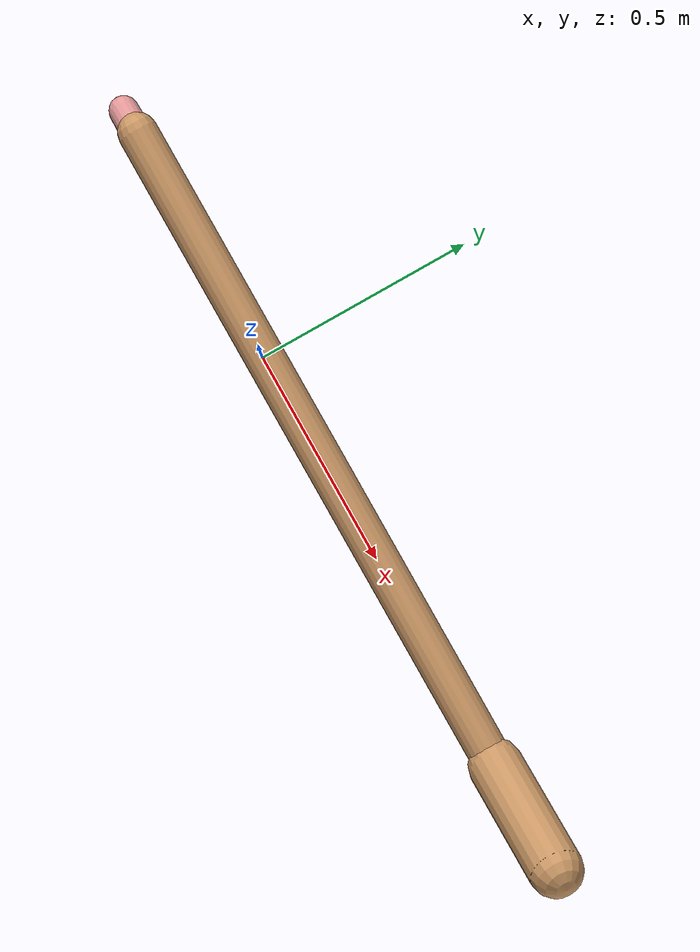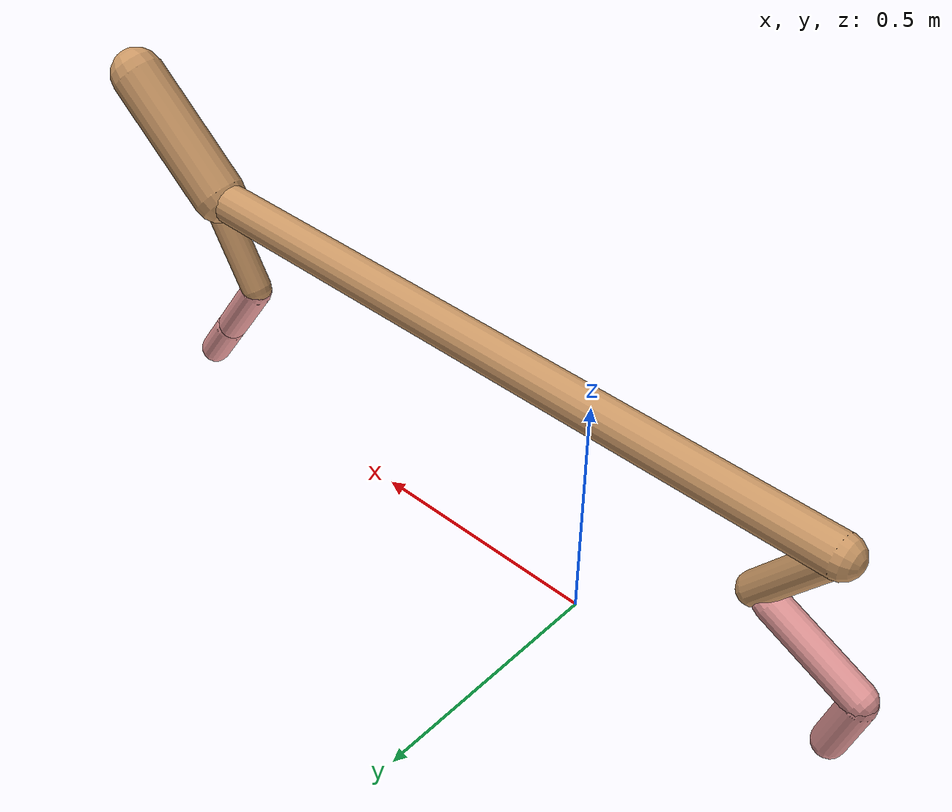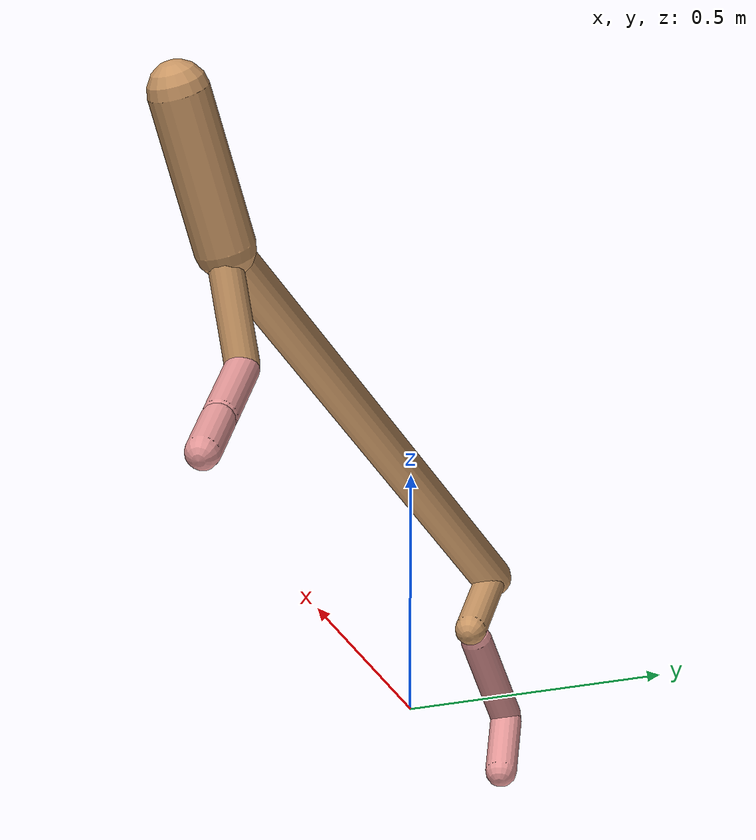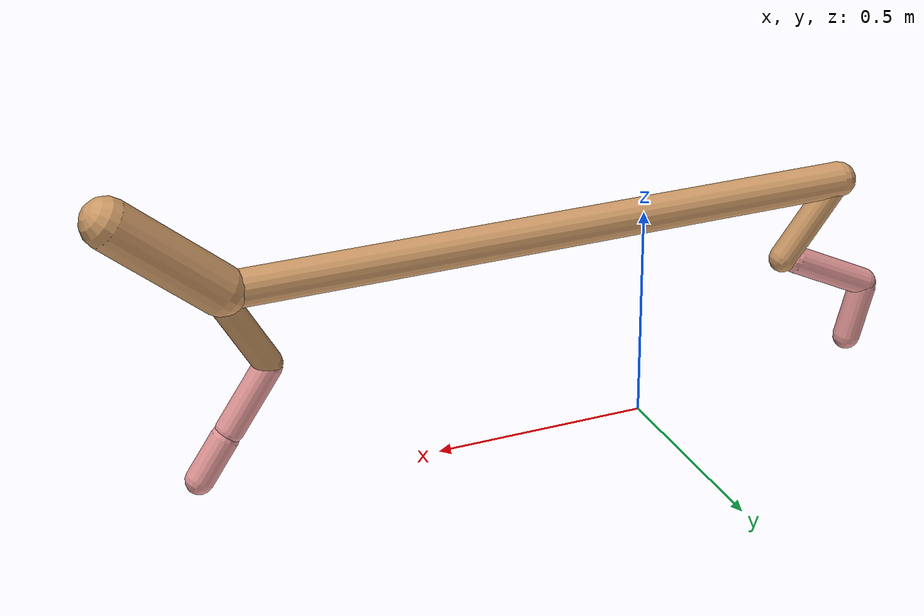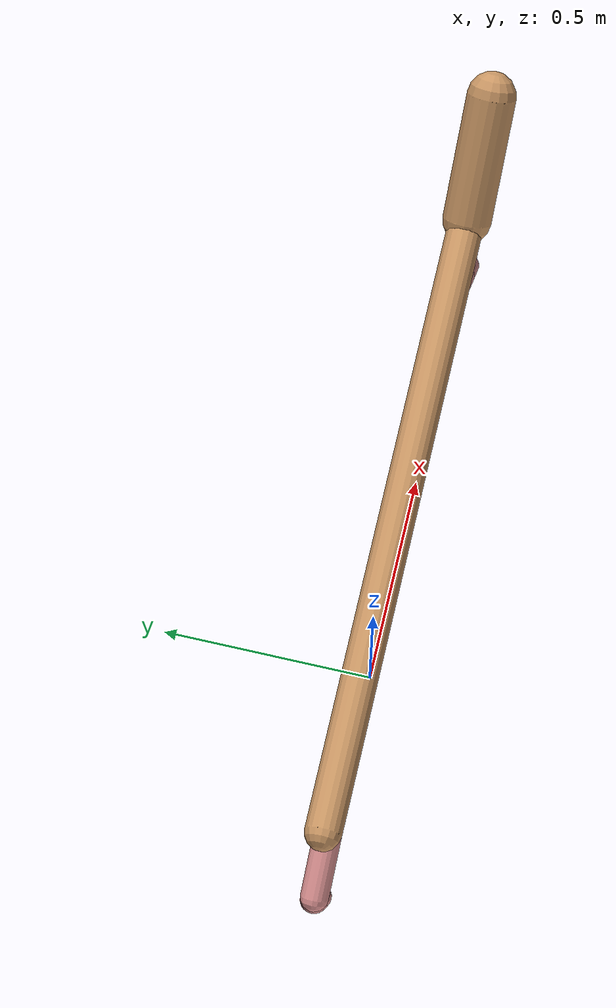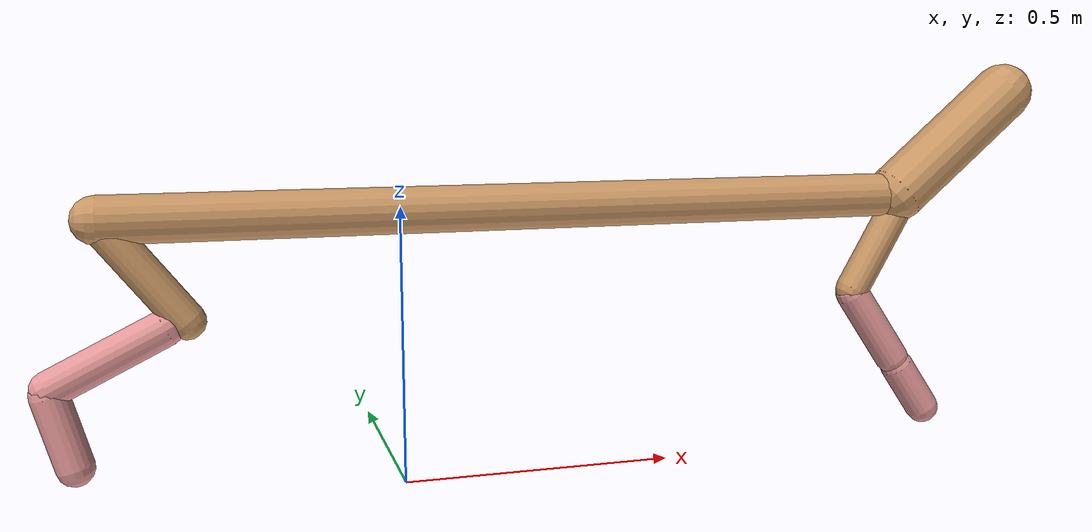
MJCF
<mujoco model="cheetah">
  <compiler angle="radian" coordinate="local" inertiafromgeom="true" settotalmass="14" />
  <default>
    <joint armature=".1" damping=".01" limited="true" solimplimit="0 .8 .03" solreflimit=".02 1" stiffness="8" />
    <geom conaffinity="0" condim="3" contype="1" friction="0.8 .1 .1" rgba="0.8 0.6 .4 1" solimp="0.0 0.8 0.01" solref="0.02 1" />
    <motor ctrllimited="true" ctrlrange="-1 1" />
  </default>
  <size nstack="300000" nuser_geom="1" />
  <option gravity="0 0 -9.81" timestep="0.01" />
  <worldbody>
    <body name="torso" pos="0.0 0.0 0.4943177862078264">
      <joint armature="0" axis="1 0 0" damping="0" limited="false" name="ignorex" pos="0 0 0" stiffness="0" type="slide" />
      <joint armature="0" axis="0 0 1" damping="0" limited="false" name="ignorez" pos="0 0 0" stiffness="0" type="slide" />
      <joint armature="0" axis="0 1 0" damping="0" limited="false" name="ignorey" pos="0 0 0" stiffness="0" type="hinge" />
      <geom fromto="-0.5 0.0 0.0 0.9968564701876448 0.0 0.0" name="torso" size="0.04168116972859782" type="capsule" />
      <geom axisangle="0 1 0 .87" name="head" pos="1.0968564701876446 0.0 0.1" size="0.05682246401312274 0.15" type="capsule" />

      <body name="bthigh" pos="-.5 0 0">
        <joint axis="0 1 0" damping="6" name="bthigh" pos="0 0 0" range="-.52 1.05" stiffness="240" type="hinge" />
        <geom axisangle="0 1 0 -3.8" name="bthigh" pos="0.0734775819030384 0.0 -0.0955208564739499" size="0.0322 0.10149999999999999" type="capsule" />
        <body name="bshin" pos="0.10695516380607678 0.0 -0.18104171294789978">
          <joint axis="0 1 0" damping="4.5" name="bshin" pos="0 0 0" range="-.785 .785" stiffness="180" type="hinge" />
          <geom axisangle="0 1 0 -2.03" name="bshin" pos="-0.0997507764050038 0.0 -0.0498753882025019" rgba="0.9 0.6 0.6 1" size="0.0322 0.105" type="capsule" />
          <body name="bfoot" pos="-0.1995015528100076 0.0 -0.0997507764050038">
            <joint axis="0 1 0" damping="3" name="bfoot" pos="0 0 0" range="-.4 .785" stiffness="120" type="hinge" />
            <geom axisangle="0 1 0 -.27" name="bfoot" pos="0.021667753813597694 0.0 -0.07005907066396588" rgba="0.9 0.6 0.6 1" size="0.0322 0.0658" type="capsule" />
            <inertial mass="10" />
          </body>
        </body>
      </body>
      <body name="fthigh" pos="0.9968564701876448 0.0 0.0">
        <joint axis="0 1 0" damping="4.5" name="fthigh" pos="0 0 0" range="-1.5 0.8" stiffness="180" type="hinge" />
        <geom axisangle="0 1 0 .52" name="fthigh" pos="-0.05558183895041311 0.0 -0.09528315248642247" size="0.0322 0.10438521502682105" type="capsule" />
        <body name="fshin" pos="-0.11116367790082622 0.0 -0.19056630497284494">
          <joint axis="0 1 0" damping="3" name="fshin" pos="0 0 0" range="-1.2 1.1" stiffness="120" type="hinge" />
          <geom axisangle="0 1 0 -.6" name="fshin" pos="0.051647437984805415 0.0 -0.07151183720973056" rgba="0.9 0.6 0.6 1" size="0.0322 0.08319423152513557" type="capsule" />
          <body name="ffoot" pos="0.10329487596961083 0.0 -0.14302367441946112">
            <joint axis="0 1 0" damping="1.5" name="ffoot" pos="0 0 0" range="-3.1 -0.3" stiffness="60" type="hinge" />
            <geom axisangle="0 1 0 -.6" name="ffoot" pos="0.03685596726418423 0.0 -0.05733150463317548" rgba="0.9 0.6 0.6 1" size="0.0322 0.054939586856221606" type="capsule" />
            <inertial mass="10" />
          </body>
        </body>
      </body>
    </body>
  </worldbody>
  <actuator>
    <motor gear="120" joint="bthigh" name="bthigh" />
    <motor gear="90" joint="bshin" name="bshin" />
    <motor gear="60" joint="bfoot" name="bfoot" />
    <motor gear="120" joint="fthigh" name="fthigh" />
    <motor gear="60" joint="fshin" name="fshin" />
    <motor gear="30" joint="ffoot" name="ffoot" />
  </actuator>
</mujoco>
